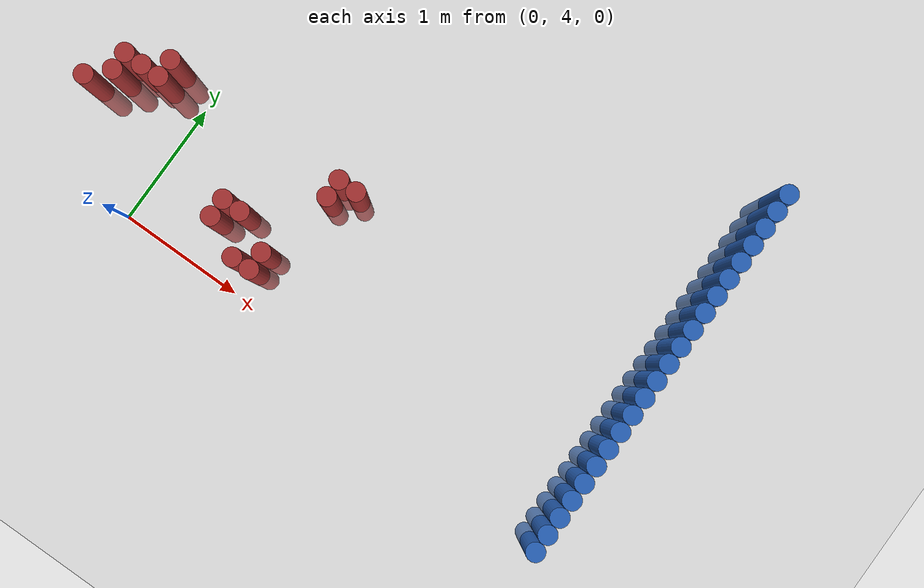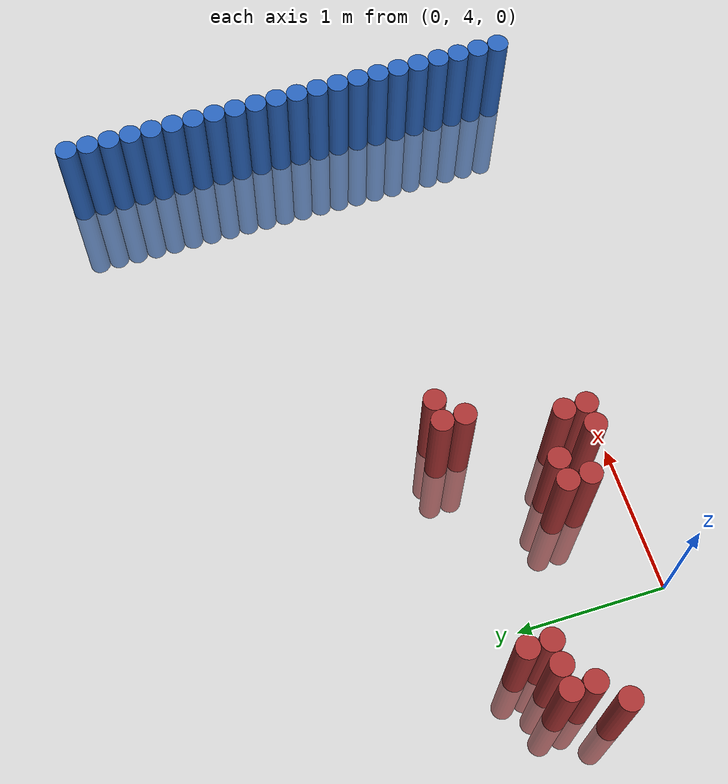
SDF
<sdf version="1.6">
 <world name="default">
  <model name="ground_plane">
   <static>1</static>
   <link name="link">
    <collision name="collision">
     <geometry><plane><normal>0 0 1</normal><size>100 100</size></plane></geometry>
     <surface><friction><ode><mu>100</mu><mu2>50</mu2></ode></friction></surface>
    </collision>
    <visual name="visual">
     <cast_shadows>0</cast_shadows>
     <geometry><plane><normal>0 0 1</normal><size>100 100</size></plane></geometry>
     <material>
      <script><uri>file://media/materials/scripts/gazebo.material</uri><name>Gazebo/Grey</name></script>
     </material>
    </visual>
   </link>
  </model>
  <model name="unit_cylinder_166">
   <static>1</static>
   <pose>3.925000 3.925000 0.000000 0.000000 0.000000 0.000000</pose>
   <link name="link">
    <inertial>
     <mass>1</mass>
     <inertia><ixx>0.145833</ixx><ixy>0</ixy><ixz>0</ixz><iyy>0.145833</iyy><iyz>0</iyz><izz>0.125</izz></inertia>
    </inertial>
    <collision name="collision">
     <geometry><cylinder><radius>0.075000</radius><length>1.5</length></cylinder></geometry>
    </collision>
    <visual name="visual">
     <geometry><cylinder><radius>0.075000</radius><length>1.5</length></cylinder></geometry>
     <material>
      <ambient>0.152000 0.379000 0.720000 1</ambient>
      <diffuse>0.152000 0.379000 0.720000 1</diffuse>
     </material>
     <material>
      <script><name>Gazebo/Grey</name><uri>file://media/materials/scripts/gazebo.material</uri></script>
     </material>
    </visual>
   </link>
  </model>
  <model name="unit_cylinder_168">
   <static>1</static>
   <pose>3.925000 4.075000 0.000000 0.000000 0.000000 0.000000</pose>
   <link name="link">
    <inertial>
     <mass>1</mass>
     <inertia><ixx>0.145833</ixx><ixy>0</ixy><ixz>0</ixz><iyy>0.145833</iyy><iyz>0</iyz><izz>0.125</izz></inertia>
    </inertial>
    <collision name="collision">
     <geometry><cylinder><radius>0.075000</radius><length>1.5</length></cylinder></geometry>
    </collision>
    <visual name="visual">
     <geometry><cylinder><radius>0.075000</radius><length>1.5</length></cylinder></geometry>
     <material>
      <ambient>0.152000 0.379000 0.720000 1</ambient>
      <diffuse>0.152000 0.379000 0.720000 1</diffuse>
     </material>
     <material>
      <script><name>Gazebo/Grey</name><uri>file://media/materials/scripts/gazebo.material</uri></script>
     </material>
    </visual>
   </link>
  </model>
  <model name="unit_cylinder_170">
   <static>1</static>
   <pose>3.925000 4.225000 0.000000 0.000000 0.000000 0.000000</pose>
   <link name="link">
    <inertial>
     <mass>1</mass>
     <inertia><ixx>0.145833</ixx><ixy>0</ixy><ixz>0</ixz><iyy>0.145833</iyy><iyz>0</iyz><izz>0.125</izz></inertia>
    </inertial>
    <collision name="collision">
     <geometry><cylinder><radius>0.075000</radius><length>1.5</length></cylinder></geometry>
    </collision>
    <visual name="visual">
     <geometry><cylinder><radius>0.075000</radius><length>1.5</length></cylinder></geometry>
     <material>
      <ambient>0.152000 0.379000 0.720000 1</ambient>
      <diffuse>0.152000 0.379000 0.720000 1</diffuse>
     </material>
     <material>
      <script><name>Gazebo/Grey</name><uri>file://media/materials/scripts/gazebo.material</uri></script>
     </material>
    </visual>
   </link>
  </model>
  <model name="unit_cylinder_172">
   <static>1</static>
   <pose>3.925000 4.375000 0.000000 0.000000 0.000000 0.000000</pose>
   <link name="link">
    <inertial>
     <mass>1</mass>
     <inertia><ixx>0.145833</ixx><ixy>0</ixy><ixz>0</ixz><iyy>0.145833</iyy><iyz>0</iyz><izz>0.125</izz></inertia>
    </inertial>
    <collision name="collision">
     <geometry><cylinder><radius>0.075000</radius><length>1.5</length></cylinder></geometry>
    </collision>
    <visual name="visual">
     <geometry><cylinder><radius>0.075000</radius><length>1.5</length></cylinder></geometry>
     <material>
      <ambient>0.152000 0.379000 0.720000 1</ambient>
      <diffuse>0.152000 0.379000 0.720000 1</diffuse>
     </material>
     <material>
      <script><name>Gazebo/Grey</name><uri>file://media/materials/scripts/gazebo.material</uri></script>
     </material>
    </visual>
   </link>
  </model>
  <model name="unit_cylinder_174">
   <static>1</static>
   <pose>3.925000 4.525000 0.000000 0.000000 0.000000 0.000000</pose>
   <link name="link">
    <inertial>
     <mass>1</mass>
     <inertia><ixx>0.145833</ixx><ixy>0</ixy><ixz>0</ixz><iyy>0.145833</iyy><iyz>0</iyz><izz>0.125</izz></inertia>
    </inertial>
    <collision name="collision">
     <geometry><cylinder><radius>0.075000</radius><length>1.5</length></cylinder></geometry>
    </collision>
    <visual name="visual">
     <geometry><cylinder><radius>0.075000</radius><length>1.5</length></cylinder></geometry>
     <material>
      <ambient>0.152000 0.379000 0.720000 1</ambient>
      <diffuse>0.152000 0.379000 0.720000 1</diffuse>
     </material>
     <material>
      <script><name>Gazebo/Grey</name><uri>file://media/materials/scripts/gazebo.material</uri></script>
     </material>
    </visual>
   </link>
  </model>
  <model name="unit_cylinder_176">
   <static>1</static>
   <pose>3.925000 4.675000 0.000000 0.000000 0.000000 0.000000</pose>
   <link name="link">
    <inertial>
     <mass>1</mass>
     <inertia><ixx>0.145833</ixx><ixy>0</ixy><ixz>0</ixz><iyy>0.145833</iyy><iyz>0</iyz><izz>0.125</izz></inertia>
    </inertial>
    <collision name="collision">
     <geometry><cylinder><radius>0.075000</radius><length>1.5</length></cylinder></geometry>
    </collision>
    <visual name="visual">
     <geometry><cylinder><radius>0.075000</radius><length>1.5</length></cylinder></geometry>
     <material>
      <ambient>0.152000 0.379000 0.720000 1</ambient>
      <diffuse>0.152000 0.379000 0.720000 1</diffuse>
     </material>
     <material>
      <script><name>Gazebo/Grey</name><uri>file://media/materials/scripts/gazebo.material</uri></script>
     </material>
    </visual>
   </link>
  </model>
  <model name="unit_cylinder_178">
   <static>1</static>
   <pose>3.925000 4.825000 0.000000 0.000000 0.000000 0.000000</pose>
   <link name="link">
    <inertial>
     <mass>1</mass>
     <inertia><ixx>0.145833</ixx><ixy>0</ixy><ixz>0</ixz><iyy>0.145833</iyy><iyz>0</iyz><izz>0.125</izz></inertia>
    </inertial>
    <collision name="collision">
     <geometry><cylinder><radius>0.075000</radius><length>1.5</length></cylinder></geometry>
    </collision>
    <visual name="visual">
     <geometry><cylinder><radius>0.075000</radius><length>1.5</length></cylinder></geometry>
     <material>
      <ambient>0.152000 0.379000 0.720000 1</ambient>
      <diffuse>0.152000 0.379000 0.720000 1</diffuse>
     </material>
     <material>
      <script><name>Gazebo/Grey</name><uri>file://media/materials/scripts/gazebo.material</uri></script>
     </material>
    </visual>
   </link>
  </model>
  <model name="unit_cylinder_180">
   <static>1</static>
   <pose>3.925000 4.975000 0.000000 0.000000 0.000000 0.000000</pose>
   <link name="link">
    <inertial>
     <mass>1</mass>
     <inertia><ixx>0.145833</ixx><ixy>0</ixy><ixz>0</ixz><iyy>0.145833</iyy><iyz>0</iyz><izz>0.125</izz></inertia>
    </inertial>
    <collision name="collision">
     <geometry><cylinder><radius>0.075000</radius><length>1.5</length></cylinder></geometry>
    </collision>
    <visual name="visual">
     <geometry><cylinder><radius>0.075000</radius><length>1.5</length></cylinder></geometry>
     <material>
      <ambient>0.152000 0.379000 0.720000 1</ambient>
      <diffuse>0.152000 0.379000 0.720000 1</diffuse>
     </material>
     <material>
      <script><name>Gazebo/Grey</name><uri>file://media/materials/scripts/gazebo.material</uri></script>
     </material>
    </visual>
   </link>
  </model>
  <model name="unit_cylinder_182">
   <static>1</static>
   <pose>3.925000 5.125000 0.000000 0.000000 0.000000 0.000000</pose>
   <link name="link">
    <inertial>
     <mass>1</mass>
     <inertia><ixx>0.145833</ixx><ixy>0</ixy><ixz>0</ixz><iyy>0.145833</iyy><iyz>0</iyz><izz>0.125</izz></inertia>
    </inertial>
    <collision name="collision">
     <geometry><cylinder><radius>0.075000</radius><length>1.5</length></cylinder></geometry>
    </collision>
    <visual name="visual">
     <geometry><cylinder><radius>0.075000</radius><length>1.5</length></cylinder></geometry>
     <material>
      <ambient>0.152000 0.379000 0.720000 1</ambient>
      <diffuse>0.152000 0.379000 0.720000 1</diffuse>
     </material>
     <material>
      <script><name>Gazebo/Grey</name><uri>file://media/materials/scripts/gazebo.material</uri></script>
     </material>
    </visual>
   </link>
  </model>
  <model name="unit_cylinder_184">
   <static>1</static>
   <pose>3.925000 5.275000 0.000000 0.000000 0.000000 0.000000</pose>
   <link name="link">
    <inertial>
     <mass>1</mass>
     <inertia><ixx>0.145833</ixx><ixy>0</ixy><ixz>0</ixz><iyy>0.145833</iyy><iyz>0</iyz><izz>0.125</izz></inertia>
    </inertial>
    <collision name="collision">
     <geometry><cylinder><radius>0.075000</radius><length>1.5</length></cylinder></geometry>
    </collision>
    <visual name="visual">
     <geometry><cylinder><radius>0.075000</radius><length>1.5</length></cylinder></geometry>
     <material>
      <ambient>0.152000 0.379000 0.720000 1</ambient>
      <diffuse>0.152000 0.379000 0.720000 1</diffuse>
     </material>
     <material>
      <script><name>Gazebo/Grey</name><uri>file://media/materials/scripts/gazebo.material</uri></script>
     </material>
    </visual>
   </link>
  </model>
  <model name="unit_cylinder_186">
   <static>1</static>
   <pose>3.925000 5.425000 0.000000 0.000000 0.000000 0.000000</pose>
   <link name="link">
    <inertial>
     <mass>1</mass>
     <inertia><ixx>0.145833</ixx><ixy>0</ixy><ixz>0</ixz><iyy>0.145833</iyy><iyz>0</iyz><izz>0.125</izz></inertia>
    </inertial>
    <collision name="collision">
     <geometry><cylinder><radius>0.075000</radius><length>1.5</length></cylinder></geometry>
    </collision>
    <visual name="visual">
     <geometry><cylinder><radius>0.075000</radius><length>1.5</length></cylinder></geometry>
     <material>
      <ambient>0.152000 0.379000 0.720000 1</ambient>
      <diffuse>0.152000 0.379000 0.720000 1</diffuse>
     </material>
     <material>
      <script><name>Gazebo/Grey</name><uri>file://media/materials/scripts/gazebo.material</uri></script>
     </material>
    </visual>
   </link>
  </model>
  <model name="unit_cylinder_188">
   <static>1</static>
   <pose>3.925000 5.575000 0.000000 0.000000 0.000000 0.000000</pose>
   <link name="link">
    <inertial>
     <mass>1</mass>
     <inertia><ixx>0.145833</ixx><ixy>0</ixy><ixz>0</ixz><iyy>0.145833</iyy><iyz>0</iyz><izz>0.125</izz></inertia>
    </inertial>
    <collision name="collision">
     <geometry><cylinder><radius>0.075000</radius><length>1.5</length></cylinder></geometry>
    </collision>
    <visual name="visual">
     <geometry><cylinder><radius>0.075000</radius><length>1.5</length></cylinder></geometry>
     <material>
      <ambient>0.152000 0.379000 0.720000 1</ambient>
      <diffuse>0.152000 0.379000 0.720000 1</diffuse>
     </material>
     <material>
      <script><name>Gazebo/Grey</name><uri>file://media/materials/scripts/gazebo.material</uri></script>
     </material>
    </visual>
   </link>
  </model>
  <model name="unit_cylinder_190">
   <static>1</static>
   <pose>3.925000 5.725000 0.000000 0.000000 0.000000 0.000000</pose>
   <link name="link">
    <inertial>
     <mass>1</mass>
     <inertia><ixx>0.145833</ixx><ixy>0</ixy><ixz>0</ixz><iyy>0.145833</iyy><iyz>0</iyz><izz>0.125</izz></inertia>
    </inertial>
    <collision name="collision">
     <geometry><cylinder><radius>0.075000</radius><length>1.5</length></cylinder></geometry>
    </collision>
    <visual name="visual">
     <geometry><cylinder><radius>0.075000</radius><length>1.5</length></cylinder></geometry>
     <material>
      <ambient>0.152000 0.379000 0.720000 1</ambient>
      <diffuse>0.152000 0.379000 0.720000 1</diffuse>
     </material>
     <material>
      <script><name>Gazebo/Grey</name><uri>file://media/materials/scripts/gazebo.material</uri></script>
     </material>
    </visual>
   </link>
  </model>
  <model name="unit_cylinder_192">
   <static>1</static>
   <pose>3.925000 5.875000 0.000000 0.000000 0.000000 0.000000</pose>
   <link name="link">
    <inertial>
     <mass>1</mass>
     <inertia><ixx>0.145833</ixx><ixy>0</ixy><ixz>0</ixz><iyy>0.145833</iyy><iyz>0</iyz><izz>0.125</izz></inertia>
    </inertial>
    <collision name="collision">
     <geometry><cylinder><radius>0.075000</radius><length>1.5</length></cylinder></geometry>
    </collision>
    <visual name="visual">
     <geometry><cylinder><radius>0.075000</radius><length>1.5</length></cylinder></geometry>
     <material>
      <ambient>0.152000 0.379000 0.720000 1</ambient>
      <diffuse>0.152000 0.379000 0.720000 1</diffuse>
     </material>
     <material>
      <script><name>Gazebo/Grey</name><uri>file://media/materials/scripts/gazebo.material</uri></script>
     </material>
    </visual>
   </link>
  </model>
  <model name="unit_cylinder_194">
   <static>1</static>
   <pose>3.925000 6.025000 0.000000 0.000000 0.000000 0.000000</pose>
   <link name="link">
    <inertial>
     <mass>1</mass>
     <inertia><ixx>0.145833</ixx><ixy>0</ixy><ixz>0</ixz><iyy>0.145833</iyy><iyz>0</iyz><izz>0.125</izz></inertia>
    </inertial>
    <collision name="collision">
     <geometry><cylinder><radius>0.075000</radius><length>1.5</length></cylinder></geometry>
    </collision>
    <visual name="visual">
     <geometry><cylinder><radius>0.075000</radius><length>1.5</length></cylinder></geometry>
     <material>
      <ambient>0.152000 0.379000 0.720000 1</ambient>
      <diffuse>0.152000 0.379000 0.720000 1</diffuse>
     </material>
     <material>
      <script><name>Gazebo/Grey</name><uri>file://media/materials/scripts/gazebo.material</uri></script>
     </material>
    </visual>
   </link>
  </model>
  <model name="unit_cylinder_196">
   <static>1</static>
   <pose>3.925000 6.175000 0.000000 0.000000 0.000000 0.000000</pose>
   <link name="link">
    <inertial>
     <mass>1</mass>
     <inertia><ixx>0.145833</ixx><ixy>0</ixy><ixz>0</ixz><iyy>0.145833</iyy><iyz>0</iyz><izz>0.125</izz></inertia>
    </inertial>
    <collision name="collision">
     <geometry><cylinder><radius>0.075000</radius><length>1.5</length></cylinder></geometry>
    </collision>
    <visual name="visual">
     <geometry><cylinder><radius>0.075000</radius><length>1.5</length></cylinder></geometry>
     <material>
      <ambient>0.152000 0.379000 0.720000 1</ambient>
      <diffuse>0.152000 0.379000 0.720000 1</diffuse>
     </material>
     <material>
      <script><name>Gazebo/Grey</name><uri>file://media/materials/scripts/gazebo.material</uri></script>
     </material>
    </visual>
   </link>
  </model>
  <model name="unit_cylinder_198">
   <static>1</static>
   <pose>3.925000 6.325000 0.000000 0.000000 0.000000 0.000000</pose>
   <link name="link">
    <inertial>
     <mass>1</mass>
     <inertia><ixx>0.145833</ixx><ixy>0</ixy><ixz>0</ixz><iyy>0.145833</iyy><iyz>0</iyz><izz>0.125</izz></inertia>
    </inertial>
    <collision name="collision">
     <geometry><cylinder><radius>0.075000</radius><length>1.5</length></cylinder></geometry>
    </collision>
    <visual name="visual">
     <geometry><cylinder><radius>0.075000</radius><length>1.5</length></cylinder></geometry>
     <material>
      <ambient>0.152000 0.379000 0.720000 1</ambient>
      <diffuse>0.152000 0.379000 0.720000 1</diffuse>
     </material>
     <material>
      <script><name>Gazebo/Grey</name><uri>file://media/materials/scripts/gazebo.material</uri></script>
     </material>
    </visual>
   </link>
  </model>
  <model name="unit_cylinder_200">
   <static>1</static>
   <pose>3.925000 6.475000 0.000000 0.000000 0.000000 0.000000</pose>
   <link name="link">
    <inertial>
     <mass>1</mass>
     <inertia><ixx>0.145833</ixx><ixy>0</ixy><ixz>0</ixz><iyy>0.145833</iyy><iyz>0</iyz><izz>0.125</izz></inertia>
    </inertial>
    <collision name="collision">
     <geometry><cylinder><radius>0.075000</radius><length>1.5</length></cylinder></geometry>
    </collision>
    <visual name="visual">
     <geometry><cylinder><radius>0.075000</radius><length>1.5</length></cylinder></geometry>
     <material>
      <ambient>0.152000 0.379000 0.720000 1</ambient>
      <diffuse>0.152000 0.379000 0.720000 1</diffuse>
     </material>
     <material>
      <script><name>Gazebo/Grey</name><uri>file://media/materials/scripts/gazebo.material</uri></script>
     </material>
    </visual>
   </link>
  </model>
  <model name="unit_cylinder_202">
   <static>1</static>
   <pose>3.925000 6.625000 0.000000 0.000000 0.000000 0.000000</pose>
   <link name="link">
    <inertial>
     <mass>1</mass>
     <inertia><ixx>0.145833</ixx><ixy>0</ixy><ixz>0</ixz><iyy>0.145833</iyy><iyz>0</iyz><izz>0.125</izz></inertia>
    </inertial>
    <collision name="collision">
     <geometry><cylinder><radius>0.075000</radius><length>1.5</length></cylinder></geometry>
    </collision>
    <visual name="visual">
     <geometry><cylinder><radius>0.075000</radius><length>1.5</length></cylinder></geometry>
     <material>
      <ambient>0.152000 0.379000 0.720000 1</ambient>
      <diffuse>0.152000 0.379000 0.720000 1</diffuse>
     </material>
     <material>
      <script><name>Gazebo/Grey</name><uri>file://media/materials/scripts/gazebo.material</uri></script>
     </material>
    </visual>
   </link>
  </model>
  <model name="unit_cylinder_204">
   <static>1</static>
   <pose>3.925000 6.775000 0.000000 0.000000 0.000000 0.000000</pose>
   <link name="link">
    <inertial>
     <mass>1</mass>
     <inertia><ixx>0.145833</ixx><ixy>0</ixy><ixz>0</ixz><iyy>0.145833</iyy><iyz>0</iyz><izz>0.125</izz></inertia>
    </inertial>
    <collision name="collision">
     <geometry><cylinder><radius>0.075000</radius><length>1.5</length></cylinder></geometry>
    </collision>
    <visual name="visual">
     <geometry><cylinder><radius>0.075000</radius><length>1.5</length></cylinder></geometry>
     <material>
      <ambient>0.152000 0.379000 0.720000 1</ambient>
      <diffuse>0.152000 0.379000 0.720000 1</diffuse>
     </material>
     <material>
      <script><name>Gazebo/Grey</name><uri>file://media/materials/scripts/gazebo.material</uri></script>
     </material>
    </visual>
   </link>
  </model>
  <model name="unit_cylinder_206">
   <static>1</static>
   <pose>3.925000 6.925000 0.000000 0.000000 0.000000 0.000000</pose>
   <link name="link">
    <inertial>
     <mass>1</mass>
     <inertia><ixx>0.145833</ixx><ixy>0</ixy><ixz>0</ixz><iyy>0.145833</iyy><iyz>0</iyz><izz>0.125</izz></inertia>
    </inertial>
    <collision name="collision">
     <geometry><cylinder><radius>0.075000</radius><length>1.5</length></cylinder></geometry>
    </collision>
    <visual name="visual">
     <geometry><cylinder><radius>0.075000</radius><length>1.5</length></cylinder></geometry>
     <material>
      <ambient>0.152000 0.379000 0.720000 1</ambient>
      <diffuse>0.152000 0.379000 0.720000 1</diffuse>
     </material>
     <material>
      <script><name>Gazebo/Grey</name><uri>file://media/materials/scripts/gazebo.material</uri></script>
     </material>
    </visual>
   </link>
  </model>
  <model name="unit_cylinder_294">
   <static>1</static>
   <pose>-0.725000 4.675000 0.000000 0.000000 0.000000 0.000000</pose>
   <link name="link">
    <inertial>
     <mass>1</mass>
     <inertia><ixx>0.145833</ixx><ixy>0</ixy><ixz>0</ixz><iyy>0.145833</iyy><iyz>0</iyz><izz>0.125</izz></inertia>
    </inertial>
    <collision name="collision">
     <geometry><cylinder><radius>0.075000</radius><length>1.5</length></cylinder></geometry>
    </collision>
    <visual name="visual">
     <geometry><cylinder><radius>0.075000</radius><length>1.5</length></cylinder></geometry>
     <material>
      <ambient>0.648000 0.192000 0.192000 1</ambient>
      <diffuse>0.648000 0.192000 0.192000 1</diffuse>
     </material>
     <material>
      <script><name>Gazebo/Grey</name><uri>file://media/materials/scripts/gazebo.material</uri></script>
     </material>
    </visual>
   </link>
  </model>
  <model name="unit_cylinder_297">
   <static>1</static>
   <pose>-0.575000 4.825000 0.000000 0.000000 0.000000 0.000000</pose>
   <link name="link">
    <inertial>
     <mass>1</mass>
     <inertia><ixx>0.145833</ixx><ixy>0</ixy><ixz>0</ixz><iyy>0.145833</iyy><iyz>0</iyz><izz>0.125</izz></inertia>
    </inertial>
    <collision name="collision">
     <geometry><cylinder><radius>0.075000</radius><length>1.5</length></cylinder></geometry>
    </collision>
    <visual name="visual">
     <geometry><cylinder><radius>0.075000</radius><length>1.5</length></cylinder></geometry>
     <material>
      <ambient>0.648000 0.192000 0.192000 1</ambient>
      <diffuse>0.648000 0.192000 0.192000 1</diffuse>
     </material>
     <material>
      <script><name>Gazebo/Grey</name><uri>file://media/materials/scripts/gazebo.material</uri></script>
     </material>
    </visual>
   </link>
  </model>
  <model name="unit_cylinder_298">
   <static>1</static>
   <pose>-0.575000 4.975000 0.000000 0.000000 0.000000 0.000000</pose>
   <link name="link">
    <inertial>
     <mass>1</mass>
     <inertia><ixx>0.145833</ixx><ixy>0</ixy><ixz>0</ixz><iyy>0.145833</iyy><iyz>0</iyz><izz>0.125</izz></inertia>
    </inertial>
    <collision name="collision">
     <geometry><cylinder><radius>0.075000</radius><length>1.5</length></cylinder></geometry>
    </collision>
    <visual name="visual">
     <geometry><cylinder><radius>0.075000</radius><length>1.5</length></cylinder></geometry>
     <material>
      <ambient>0.648000 0.192000 0.192000 1</ambient>
      <diffuse>0.648000 0.192000 0.192000 1</diffuse>
     </material>
     <material>
      <script><name>Gazebo/Grey</name><uri>file://media/materials/scripts/gazebo.material</uri></script>
     </material>
    </visual>
   </link>
  </model>
  <model name="unit_cylinder_300">
   <static>1</static>
   <pose>-0.425000 4.975000 0.000000 0.000000 0.000000 0.000000</pose>
   <link name="link">
    <inertial>
     <mass>1</mass>
     <inertia><ixx>0.145833</ixx><ixy>0</ixy><ixz>0</ixz><iyy>0.145833</iyy><iyz>0</iyz><izz>0.125</izz></inertia>
    </inertial>
    <collision name="collision">
     <geometry><cylinder><radius>0.075000</radius><length>1.5</length></cylinder></geometry>
    </collision>
    <visual name="visual">
     <geometry><cylinder><radius>0.075000</radius><length>1.5</length></cylinder></geometry>
     <material>
      <ambient>0.648000 0.192000 0.192000 1</ambient>
      <diffuse>0.648000 0.192000 0.192000 1</diffuse>
     </material>
     <material>
      <script><name>Gazebo/Grey</name><uri>file://media/materials/scripts/gazebo.material</uri></script>
     </material>
    </visual>
   </link>
  </model>
  <model name="unit_cylinder_301">
   <static>1</static>
   <pose>-0.275000 4.975000 0.000000 0.000000 0.000000 0.000000</pose>
   <link name="link">
    <inertial>
     <mass>1</mass>
     <inertia><ixx>0.145833</ixx><ixy>0</ixy><ixz>0</ixz><iyy>0.145833</iyy><iyz>0</iyz><izz>0.125</izz></inertia>
    </inertial>
    <collision name="collision">
     <geometry><cylinder><radius>0.075000</radius><length>1.5</length></cylinder></geometry>
    </collision>
    <visual name="visual">
     <geometry><cylinder><radius>0.075000</radius><length>1.5</length></cylinder></geometry>
     <material>
      <ambient>0.648000 0.192000 0.192000 1</ambient>
      <diffuse>0.648000 0.192000 0.192000 1</diffuse>
     </material>
     <material>
      <script><name>Gazebo/Grey</name><uri>file://media/materials/scripts/gazebo.material</uri></script>
     </material>
    </visual>
   </link>
  </model>
  <model name="unit_cylinder_302">
   <static>1</static>
   <pose>-0.275000 5.125000 0.000000 0.000000 0.000000 0.000000</pose>
   <link name="link">
    <inertial>
     <mass>1</mass>
     <inertia><ixx>0.145833</ixx><ixy>0</ixy><ixz>0</ixz><iyy>0.145833</iyy><iyz>0</iyz><izz>0.125</izz></inertia>
    </inertial>
    <collision name="collision">
     <geometry><cylinder><radius>0.075000</radius><length>1.5</length></cylinder></geometry>
    </collision>
    <visual name="visual">
     <geometry><cylinder><radius>0.075000</radius><length>1.5</length></cylinder></geometry>
     <material>
      <ambient>0.648000 0.192000 0.192000 1</ambient>
      <diffuse>0.648000 0.192000 0.192000 1</diffuse>
     </material>
     <material>
      <script><name>Gazebo/Grey</name><uri>file://media/materials/scripts/gazebo.material</uri></script>
     </material>
    </visual>
   </link>
  </model>
  <model name="unit_cylinder_306">
   <static>1</static>
   <pose>0.625000 4.375000 0.000000 0.000000 0.000000 0.000000</pose>
   <link name="link">
    <inertial>
     <mass>1</mass>
     <inertia><ixx>0.145833</ixx><ixy>0</ixy><ixz>0</ixz><iyy>0.145833</iyy><iyz>0</iyz><izz>0.125</izz></inertia>
    </inertial>
    <collision name="collision">
     <geometry><cylinder><radius>0.075000</radius><length>1.5</length></cylinder></geometry>
    </collision>
    <visual name="visual">
     <geometry><cylinder><radius>0.075000</radius><length>1.5</length></cylinder></geometry>
     <material>
      <ambient>0.648000 0.192000 0.192000 1</ambient>
      <diffuse>0.648000 0.192000 0.192000 1</diffuse>
     </material>
     <material>
      <script><name>Gazebo/Grey</name><uri>file://media/materials/scripts/gazebo.material</uri></script>
     </material>
    </visual>
   </link>
  </model>
  <model name="unit_cylinder_307">
   <static>1</static>
   <pose>0.625000 4.525000 0.000000 0.000000 0.000000 0.000000</pose>
   <link name="link">
    <inertial>
     <mass>1</mass>
     <inertia><ixx>0.145833</ixx><ixy>0</ixy><ixz>0</ixz><iyy>0.145833</iyy><iyz>0</iyz><izz>0.125</izz></inertia>
    </inertial>
    <collision name="collision">
     <geometry><cylinder><radius>0.075000</radius><length>1.5</length></cylinder></geometry>
    </collision>
    <visual name="visual">
     <geometry><cylinder><radius>0.075000</radius><length>1.5</length></cylinder></geometry>
     <material>
      <ambient>0.648000 0.192000 0.192000 1</ambient>
      <diffuse>0.648000 0.192000 0.192000 1</diffuse>
     </material>
     <material>
      <script><name>Gazebo/Grey</name><uri>file://media/materials/scripts/gazebo.material</uri></script>
     </material>
    </visual>
   </link>
  </model>
  <model name="unit_cylinder_308">
   <static>1</static>
   <pose>0.775000 4.525000 0.000000 0.000000 0.000000 0.000000</pose>
   <link name="link">
    <inertial>
     <mass>1</mass>
     <inertia><ixx>0.145833</ixx><ixy>0</ixy><ixz>0</ixz><iyy>0.145833</iyy><iyz>0</iyz><izz>0.125</izz></inertia>
    </inertial>
    <collision name="collision">
     <geometry><cylinder><radius>0.075000</radius><length>1.5</length></cylinder></geometry>
    </collision>
    <visual name="visual">
     <geometry><cylinder><radius>0.075000</radius><length>1.5</length></cylinder></geometry>
     <material>
      <ambient>0.648000 0.192000 0.192000 1</ambient>
      <diffuse>0.648000 0.192000 0.192000 1</diffuse>
     </material>
     <material>
      <script><name>Gazebo/Grey</name><uri>file://media/materials/scripts/gazebo.material</uri></script>
     </material>
    </visual>
   </link>
  </model>
  <model name="unit_cylinder_309">
   <static>1</static>
   <pose>0.925000 4.225000 0.000000 0.000000 0.000000 0.000000</pose>
   <link name="link">
    <inertial>
     <mass>1</mass>
     <inertia><ixx>0.145833</ixx><ixy>0</ixy><ixz>0</ixz><iyy>0.145833</iyy><iyz>0</iyz><izz>0.125</izz></inertia>
    </inertial>
    <collision name="collision">
     <geometry><cylinder><radius>0.075000</radius><length>1.5</length></cylinder></geometry>
    </collision>
    <visual name="visual">
     <geometry><cylinder><radius>0.075000</radius><length>1.5</length></cylinder></geometry>
     <material>
      <ambient>0.648000 0.192000 0.192000 1</ambient>
      <diffuse>0.648000 0.192000 0.192000 1</diffuse>
     </material>
     <material>
      <script><name>Gazebo/Grey</name><uri>file://media/materials/scripts/gazebo.material</uri></script>
     </material>
    </visual>
   </link>
  </model>
  <model name="unit_cylinder_311">
   <static>1</static>
   <pose>1.075000 4.225000 0.000000 0.000000 0.000000 0.000000</pose>
   <link name="link">
    <inertial>
     <mass>1</mass>
     <inertia><ixx>0.145833</ixx><ixy>0</ixy><ixz>0</ixz><iyy>0.145833</iyy><iyz>0</iyz><izz>0.125</izz></inertia>
    </inertial>
    <collision name="collision">
     <geometry><cylinder><radius>0.075000</radius><length>1.5</length></cylinder></geometry>
    </collision>
    <visual name="visual">
     <geometry><cylinder><radius>0.075000</radius><length>1.5</length></cylinder></geometry>
     <material>
      <ambient>0.648000 0.192000 0.192000 1</ambient>
      <diffuse>0.648000 0.192000 0.192000 1</diffuse>
     </material>
     <material>
      <script><name>Gazebo/Grey</name><uri>file://media/materials/scripts/gazebo.material</uri></script>
     </material>
    </visual>
   </link>
  </model>
  <model name="unit_cylinder_312">
   <static>1</static>
   <pose>1.075000 4.375000 0.000000 0.000000 0.000000 0.000000</pose>
   <link name="link">
    <inertial>
     <mass>1</mass>
     <inertia><ixx>0.145833</ixx><ixy>0</ixy><ixz>0</ixz><iyy>0.145833</iyy><iyz>0</iyz><izz>0.125</izz></inertia>
    </inertial>
    <collision name="collision">
     <geometry><cylinder><radius>0.075000</radius><length>1.5</length></cylinder></geometry>
    </collision>
    <visual name="visual">
     <geometry><cylinder><radius>0.075000</radius><length>1.5</length></cylinder></geometry>
     <material>
      <ambient>0.648000 0.192000 0.192000 1</ambient>
      <diffuse>0.648000 0.192000 0.192000 1</diffuse>
     </material>
     <material>
      <script><name>Gazebo/Grey</name><uri>file://media/materials/scripts/gazebo.material</uri></script>
     </material>
    </visual>
   </link>
  </model>
  <model name="unit_cylinder_315">
   <static>1</static>
   <pose>1.225000 4.975000 0.000000 0.000000 0.000000 0.000000</pose>
   <link name="link">
    <inertial>
     <mass>1</mass>
     <inertia><ixx>0.145833</ixx><ixy>0</ixy><ixz>0</ixz><iyy>0.145833</iyy><iyz>0</iyz><izz>0.125</izz></inertia>
    </inertial>
    <collision name="collision">
     <geometry><cylinder><radius>0.075000</radius><length>1.5</length></cylinder></geometry>
    </collision>
    <visual name="visual">
     <geometry><cylinder><radius>0.075000</radius><length>1.5</length></cylinder></geometry>
     <material>
      <ambient>0.648000 0.192000 0.192000 1</ambient>
      <diffuse>0.648000 0.192000 0.192000 1</diffuse>
     </material>
     <material>
      <script><name>Gazebo/Grey</name><uri>file://media/materials/scripts/gazebo.material</uri></script>
     </material>
    </visual>
   </link>
  </model>
  <model name="unit_cylinder_316">
   <static>1</static>
   <pose>1.225000 5.125000 0.000000 0.000000 0.000000 0.000000</pose>
   <link name="link">
    <inertial>
     <mass>1</mass>
     <inertia><ixx>0.145833</ixx><ixy>0</ixy><ixz>0</ixz><iyy>0.145833</iyy><iyz>0</iyz><izz>0.125</izz></inertia>
    </inertial>
    <collision name="collision">
     <geometry><cylinder><radius>0.075000</radius><length>1.5</length></cylinder></geometry>
    </collision>
    <visual name="visual">
     <geometry><cylinder><radius>0.075000</radius><length>1.5</length></cylinder></geometry>
     <material>
      <ambient>0.648000 0.192000 0.192000 1</ambient>
      <diffuse>0.648000 0.192000 0.192000 1</diffuse>
     </material>
     <material>
      <script><name>Gazebo/Grey</name><uri>file://media/materials/scripts/gazebo.material</uri></script>
     </material>
    </visual>
   </link>
  </model>
  <model name="unit_cylinder_318">
   <static>1</static>
   <pose>1.375000 5.125000 0.000000 0.000000 0.000000 0.000000</pose>
   <link name="link">
    <inertial>
     <mass>1</mass>
     <inertia><ixx>0.145833</ixx><ixy>0</ixy><ixz>0</ixz><iyy>0.145833</iyy><iyz>0</iyz><izz>0.125</izz></inertia>
    </inertial>
    <collision name="collision">
     <geometry><cylinder><radius>0.075000</radius><length>1.5</length></cylinder></geometry>
    </collision>
    <visual name="visual">
     <geometry><cylinder><radius>0.075000</radius><length>1.5</length></cylinder></geometry>
     <material>
      <ambient>0.648000 0.192000 0.192000 1</ambient>
      <diffuse>0.648000 0.192000 0.192000 1</diffuse>
     </material>
     <material>
      <script><name>Gazebo/Grey</name><uri>file://media/materials/scripts/gazebo.material</uri></script>
     </material>
    </visual>
   </link>
  </model>
  <model name="unit_cylinder_371">
   <static>1</static>
   <pose>3.925000 3.775000 0.000000 0.000000 0.000000 0.000000</pose>
   <link name="link">
    <inertial>
     <mass>1</mass>
     <inertia><ixx>0.145833</ixx><ixy>0</ixy><ixz>0</ixz><iyy>0.145833</iyy><iyz>0</iyz><izz>0.125</izz></inertia>
    </inertial>
    <collision name="collision">
     <geometry><cylinder><radius>0.075000</radius><length>1.5</length></cylinder></geometry>
    </collision>
    <visual name="visual">
     <geometry><cylinder><radius>0.075000</radius><length>1.5</length></cylinder></geometry>
     <material>
      <ambient>0.152000 0.379000 0.720000 1</ambient>
      <diffuse>0.152000 0.379000 0.720000 1</diffuse>
     </material>
     <material>
      <script><name>Gazebo/Grey</name><uri>file://media/materials/scripts/gazebo.material</uri></script>
     </material>
    </visual>
   </link>
  </model>
  <model name="unit_cylinder_372">
   <static>1</static>
   <pose>3.925000 3.925000 0.000000 0.000000 0.000000 0.000000</pose>
   <link name="link">
    <inertial>
     <mass>1</mass>
     <inertia><ixx>0.145833</ixx><ixy>0</ixy><ixz>0</ixz><iyy>0.145833</iyy><iyz>0</iyz><izz>0.125</izz></inertia>
    </inertial>
    <collision name="collision">
     <geometry><cylinder><radius>0.075000</radius><length>1.5</length></cylinder></geometry>
    </collision>
    <visual name="visual">
     <geometry><cylinder><radius>0.075000</radius><length>1.5</length></cylinder></geometry>
     <material>
      <ambient>0.152000 0.379000 0.720000 1</ambient>
      <diffuse>0.152000 0.379000 0.720000 1</diffuse>
     </material>
     <material>
      <script><name>Gazebo/Grey</name><uri>file://media/materials/scripts/gazebo.material</uri></script>
     </material>
    </visual>
   </link>
  </model>
  <model name="unit_cylinder_373">
   <static>1</static>
   <pose>3.925000 4.075000 0.000000 0.000000 0.000000 0.000000</pose>
   <link name="link">
    <inertial>
     <mass>1</mass>
     <inertia><ixx>0.145833</ixx><ixy>0</ixy><ixz>0</ixz><iyy>0.145833</iyy><iyz>0</iyz><izz>0.125</izz></inertia>
    </inertial>
    <collision name="collision">
     <geometry><cylinder><radius>0.075000</radius><length>1.5</length></cylinder></geometry>
    </collision>
    <visual name="visual">
     <geometry><cylinder><radius>0.075000</radius><length>1.5</length></cylinder></geometry>
     <material>
      <ambient>0.152000 0.379000 0.720000 1</ambient>
      <diffuse>0.152000 0.379000 0.720000 1</diffuse>
     </material>
     <material>
      <script><name>Gazebo/Grey</name><uri>file://media/materials/scripts/gazebo.material</uri></script>
     </material>
    </visual>
   </link>
  </model>
  <model name="unit_cylinder_374">
   <static>1</static>
   <pose>3.925000 4.225000 0.000000 0.000000 0.000000 0.000000</pose>
   <link name="link">
    <inertial>
     <mass>1</mass>
     <inertia><ixx>0.145833</ixx><ixy>0</ixy><ixz>0</ixz><iyy>0.145833</iyy><iyz>0</iyz><izz>0.125</izz></inertia>
    </inertial>
    <collision name="collision">
     <geometry><cylinder><radius>0.075000</radius><length>1.5</length></cylinder></geometry>
    </collision>
    <visual name="visual">
     <geometry><cylinder><radius>0.075000</radius><length>1.5</length></cylinder></geometry>
     <material>
      <ambient>0.152000 0.379000 0.720000 1</ambient>
      <diffuse>0.152000 0.379000 0.720000 1</diffuse>
     </material>
     <material>
      <script><name>Gazebo/Grey</name><uri>file://media/materials/scripts/gazebo.material</uri></script>
     </material>
    </visual>
   </link>
  </model>
  <model name="unit_cylinder_375">
   <static>1</static>
   <pose>3.925000 4.375000 0.000000 0.000000 0.000000 0.000000</pose>
   <link name="link">
    <inertial>
     <mass>1</mass>
     <inertia><ixx>0.145833</ixx><ixy>0</ixy><ixz>0</ixz><iyy>0.145833</iyy><iyz>0</iyz><izz>0.125</izz></inertia>
    </inertial>
    <collision name="collision">
     <geometry><cylinder><radius>0.075000</radius><length>1.5</length></cylinder></geometry>
    </collision>
    <visual name="visual">
     <geometry><cylinder><radius>0.075000</radius><length>1.5</length></cylinder></geometry>
     <material>
      <ambient>0.152000 0.379000 0.720000 1</ambient>
      <diffuse>0.152000 0.379000 0.720000 1</diffuse>
     </material>
     <material>
      <script><name>Gazebo/Grey</name><uri>file://media/materials/scripts/gazebo.material</uri></script>
     </material>
    </visual>
   </link>
  </model>
  <model name="unit_cylinder_376">
   <static>1</static>
   <pose>3.925000 4.525000 0.000000 0.000000 0.000000 0.000000</pose>
   <link name="link">
    <inertial>
     <mass>1</mass>
     <inertia><ixx>0.145833</ixx><ixy>0</ixy><ixz>0</ixz><iyy>0.145833</iyy><iyz>0</iyz><izz>0.125</izz></inertia>
    </inertial>
    <collision name="collision">
     <geometry><cylinder><radius>0.075000</radius><length>1.5</length></cylinder></geometry>
    </collision>
    <visual name="visual">
     <geometry><cylinder><radius>0.075000</radius><length>1.5</length></cylinder></geometry>
     <material>
      <ambient>0.152000 0.379000 0.720000 1</ambient>
      <diffuse>0.152000 0.379000 0.720000 1</diffuse>
     </material>
     <material>
      <script><name>Gazebo/Grey</name><uri>file://media/materials/scripts/gazebo.material</uri></script>
     </material>
    </visual>
   </link>
  </model>
  <model name="unit_cylinder_377">
   <static>1</static>
   <pose>3.925000 4.675000 0.000000 0.000000 0.000000 0.000000</pose>
   <link name="link">
    <inertial>
     <mass>1</mass>
     <inertia><ixx>0.145833</ixx><ixy>0</ixy><ixz>0</ixz><iyy>0.145833</iyy><iyz>0</iyz><izz>0.125</izz></inertia>
    </inertial>
    <collision name="collision">
     <geometry><cylinder><radius>0.075000</radius><length>1.5</length></cylinder></geometry>
    </collision>
    <visual name="visual">
     <geometry><cylinder><radius>0.075000</radius><length>1.5</length></cylinder></geometry>
     <material>
      <ambient>0.152000 0.379000 0.720000 1</ambient>
      <diffuse>0.152000 0.379000 0.720000 1</diffuse>
     </material>
     <material>
      <script><name>Gazebo/Grey</name><uri>file://media/materials/scripts/gazebo.material</uri></script>
     </material>
    </visual>
   </link>
  </model>
  <model name="unit_cylinder_378">
   <static>1</static>
   <pose>3.925000 4.825000 0.000000 0.000000 0.000000 0.000000</pose>
   <link name="link">
    <inertial>
     <mass>1</mass>
     <inertia><ixx>0.145833</ixx><ixy>0</ixy><ixz>0</ixz><iyy>0.145833</iyy><iyz>0</iyz><izz>0.125</izz></inertia>
    </inertial>
    <collision name="collision">
     <geometry><cylinder><radius>0.075000</radius><length>1.5</length></cylinder></geometry>
    </collision>
    <visual name="visual">
     <geometry><cylinder><radius>0.075000</radius><length>1.5</length></cylinder></geometry>
     <material>
      <ambient>0.152000 0.379000 0.720000 1</ambient>
      <diffuse>0.152000 0.379000 0.720000 1</diffuse>
     </material>
     <material>
      <script><name>Gazebo/Grey</name><uri>file://media/materials/scripts/gazebo.material</uri></script>
     </material>
    </visual>
   </link>
  </model>
  <model name="unit_cylinder_379">
   <static>1</static>
   <pose>3.925000 4.975000 0.000000 0.000000 0.000000 0.000000</pose>
   <link name="link">
    <inertial>
     <mass>1</mass>
     <inertia><ixx>0.145833</ixx><ixy>0</ixy><ixz>0</ixz><iyy>0.145833</iyy><iyz>0</iyz><izz>0.125</izz></inertia>
    </inertial>
    <collision name="collision">
     <geometry><cylinder><radius>0.075000</radius><length>1.5</length></cylinder></geometry>
    </collision>
    <visual name="visual">
     <geometry><cylinder><radius>0.075000</radius><length>1.5</length></cylinder></geometry>
     <material>
      <ambient>0.152000 0.379000 0.720000 1</ambient>
      <diffuse>0.152000 0.379000 0.720000 1</diffuse>
     </material>
     <material>
      <script><name>Gazebo/Grey</name><uri>file://media/materials/scripts/gazebo.material</uri></script>
     </material>
    </visual>
   </link>
  </model>
  <model name="unit_cylinder_380">
   <static>1</static>
   <pose>3.925000 5.125000 0.000000 0.000000 0.000000 0.000000</pose>
   <link name="link">
    <inertial>
     <mass>1</mass>
     <inertia><ixx>0.145833</ixx><ixy>0</ixy><ixz>0</ixz><iyy>0.145833</iyy><iyz>0</iyz><izz>0.125</izz></inertia>
    </inertial>
    <collision name="collision">
     <geometry><cylinder><radius>0.075000</radius><length>1.5</length></cylinder></geometry>
    </collision>
    <visual name="visual">
     <geometry><cylinder><radius>0.075000</radius><length>1.5</length></cylinder></geometry>
     <material>
      <ambient>0.152000 0.379000 0.720000 1</ambient>
      <diffuse>0.152000 0.379000 0.720000 1</diffuse>
     </material>
     <material>
      <script><name>Gazebo/Grey</name><uri>file://media/materials/scripts/gazebo.material</uri></script>
     </material>
    </visual>
   </link>
  </model>
  <model name="unit_cylinder_381">
   <static>1</static>
   <pose>3.925000 5.275000 0.000000 0.000000 0.000000 0.000000</pose>
   <link name="link">
    <inertial>
     <mass>1</mass>
     <inertia><ixx>0.145833</ixx><ixy>0</ixy><ixz>0</ixz><iyy>0.145833</iyy><iyz>0</iyz><izz>0.125</izz></inertia>
    </inertial>
    <collision name="collision">
     <geometry><cylinder><radius>0.075000</radius><length>1.5</length></cylinder></geometry>
    </collision>
    <visual name="visual">
     <geometry><cylinder><radius>0.075000</radius><length>1.5</length></cylinder></geometry>
     <material>
      <ambient>0.152000 0.379000 0.720000 1</ambient>
      <diffuse>0.152000 0.379000 0.720000 1</diffuse>
     </material>
     <material>
      <script><name>Gazebo/Grey</name><uri>file://media/materials/scripts/gazebo.material</uri></script>
     </material>
    </visual>
   </link>
  </model>
  <model name="unit_cylinder_382">
   <static>1</static>
   <pose>3.925000 5.425000 0.000000 0.000000 0.000000 0.000000</pose>
   <link name="link">
    <inertial>
     <mass>1</mass>
     <inertia><ixx>0.145833</ixx><ixy>0</ixy><ixz>0</ixz><iyy>0.145833</iyy><iyz>0</iyz><izz>0.125</izz></inertia>
    </inertial>
    <collision name="collision">
     <geometry><cylinder><radius>0.075000</radius><length>1.5</length></cylinder></geometry>
    </collision>
    <visual name="visual">
     <geometry><cylinder><radius>0.075000</radius><length>1.5</length></cylinder></geometry>
     <material>
      <ambient>0.152000 0.379000 0.720000 1</ambient>
      <diffuse>0.152000 0.379000 0.720000 1</diffuse>
     </material>
     <material>
      <script><name>Gazebo/Grey</name><uri>file://media/materials/scripts/gazebo.material</uri></script>
     </material>
    </visual>
   </link>
  </model>
 </world>
</sdf>
